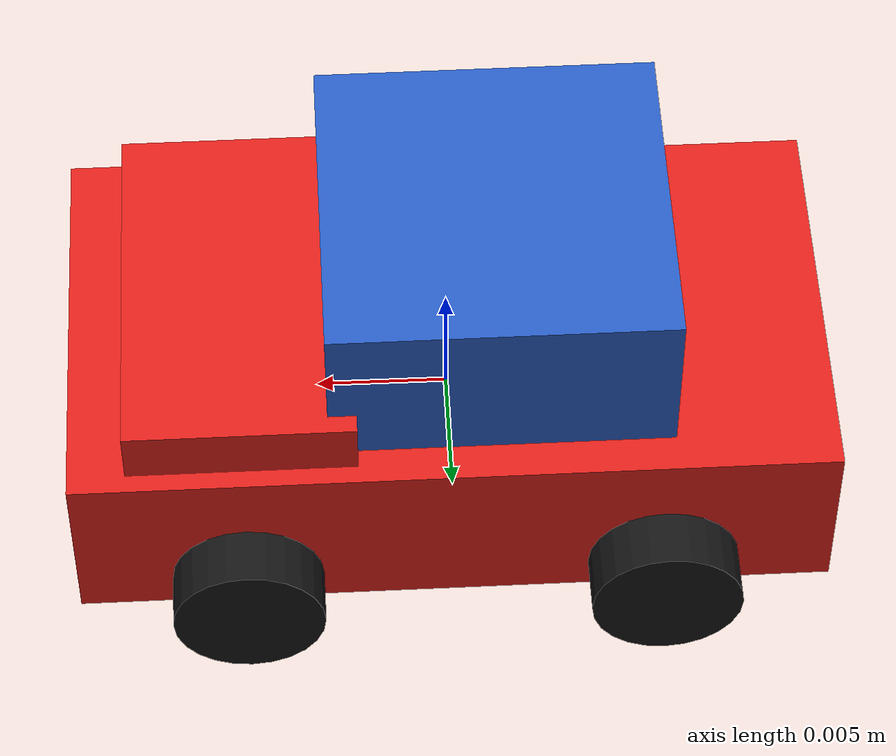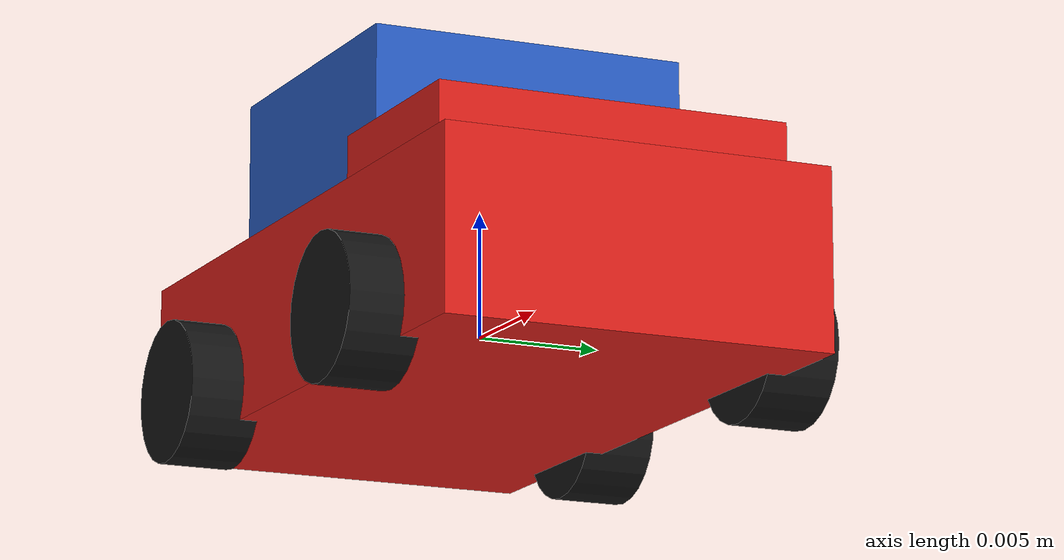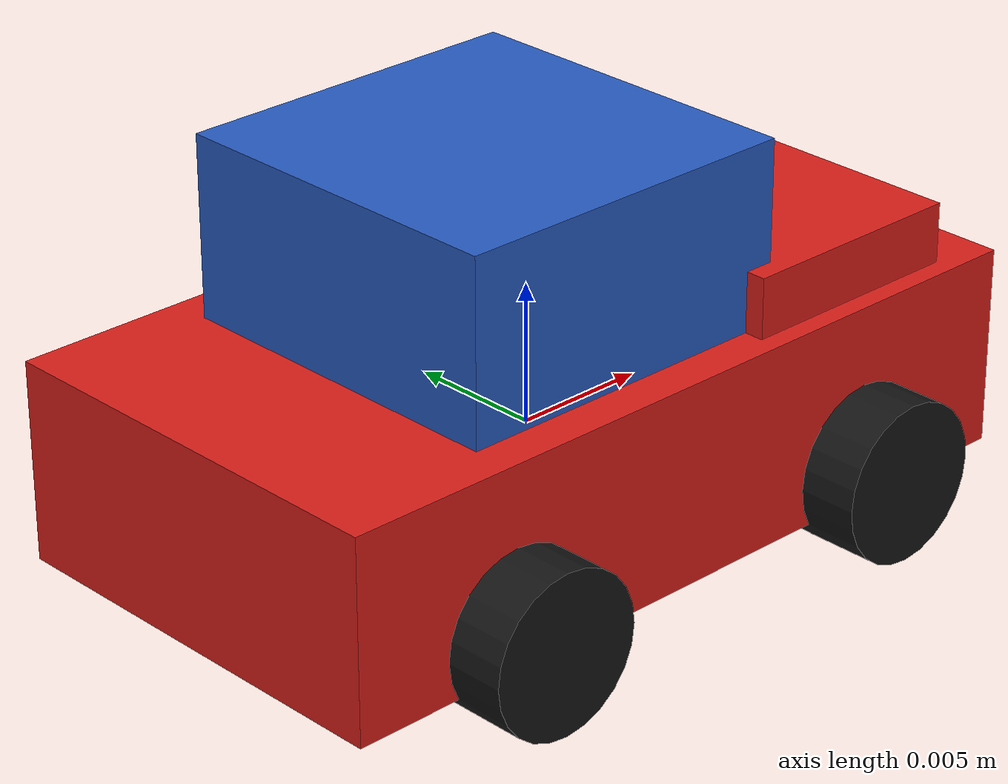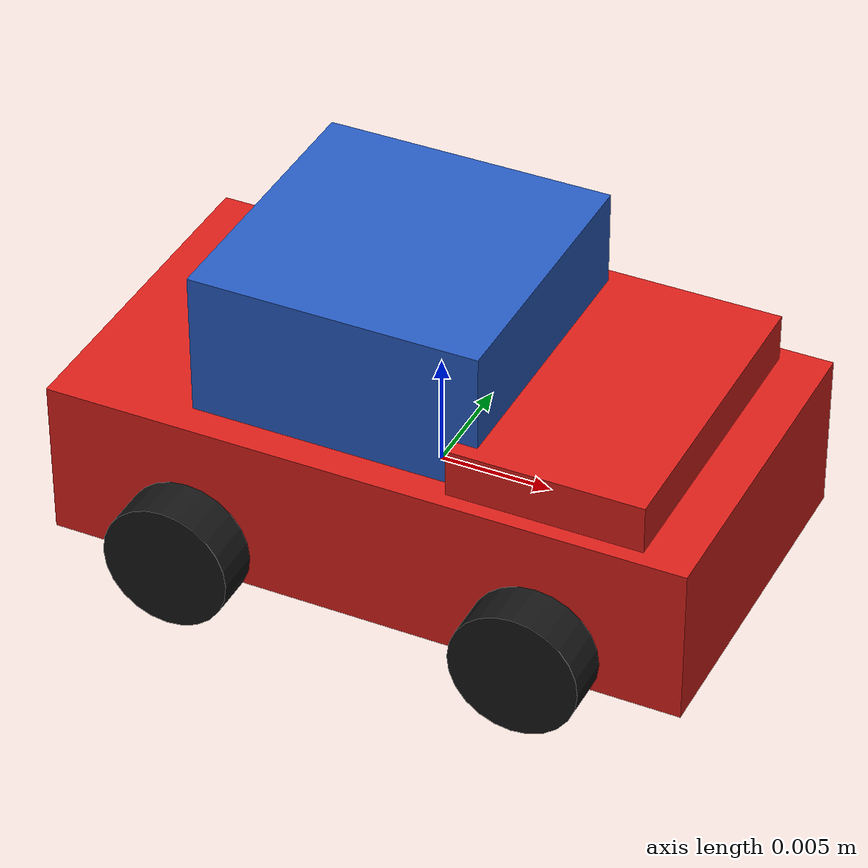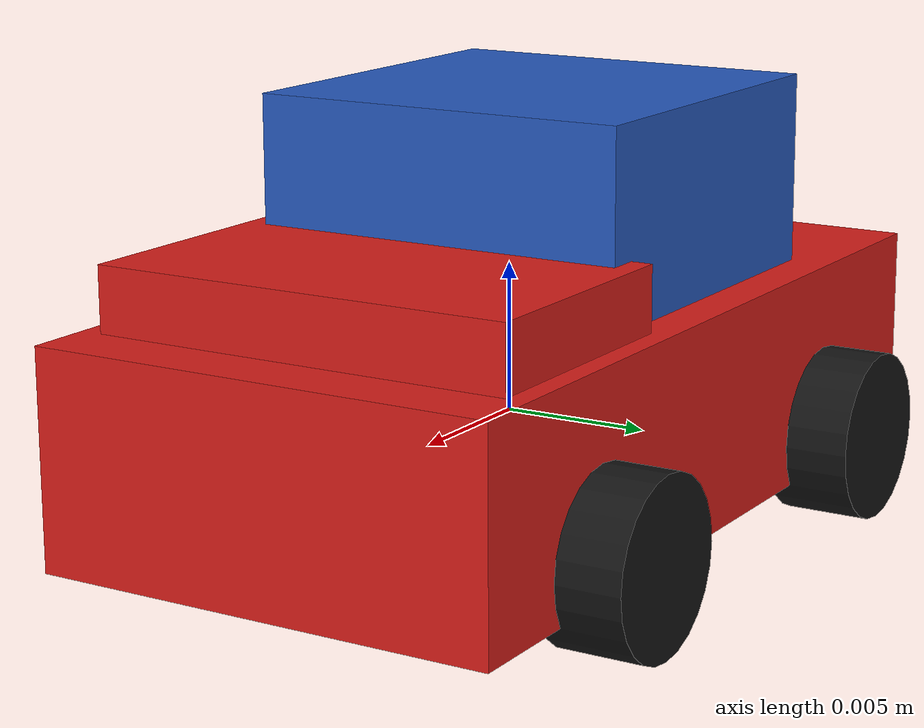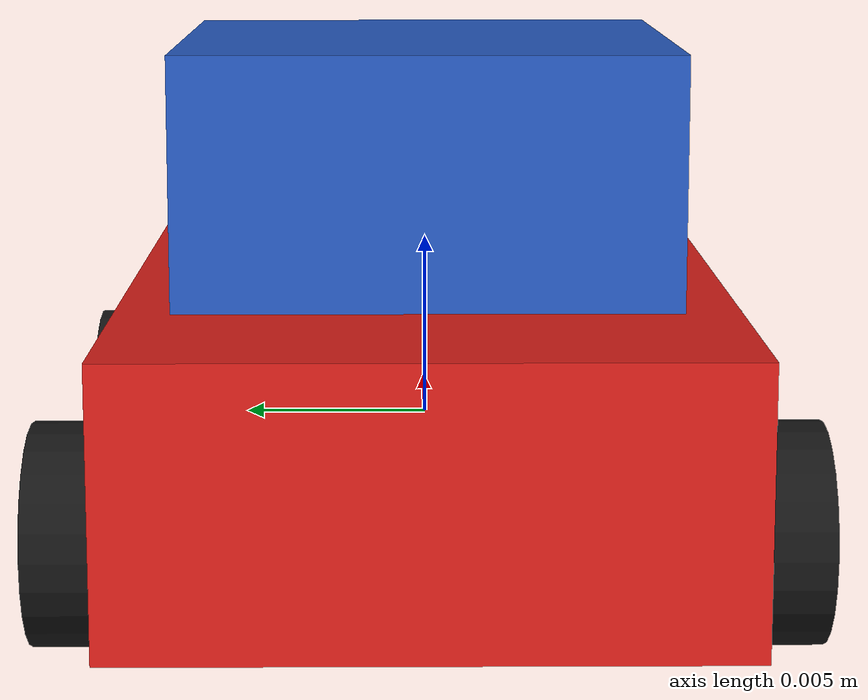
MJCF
<mujoco model="bbq_sauce_mover">
  <compiler angle="radian"/>
  <asset>
    <material name="car_body" rgba="0.85 0.12 0.10 1" specular="0.4" reflectance="0.3"/>
    <material name="car_cabin" rgba="0.15 0.35 0.75 1" specular="0.4" reflectance="0.3"/>
    <material name="car_wheel" rgba="0.08 0.08 0.08 1" specular="0.4" reflectance="0.3"/>
  </asset>
  <worldbody>
    <body>
      <body name="object">
        <geom name="chassis" type="box" size="0.01429 0.00786 0.00357" pos="0.00000 0.00000 0.00071"
              material="car_body" group="1" contype="0" conaffinity="0"
              solimp="0.998 0.998 0.001" solref="0.001 1" density="100" friction="0.95 0.3 0.1"/>
        <geom name="cabin" type="box" size="0.00643 0.00643 0.00357" pos="-0.00179 0.00000 0.00714"
              material="car_cabin" group="1" contype="0" conaffinity="0"
              solimp="0.998 0.998 0.001" solref="0.001 1" density="100" friction="0.95 0.3 0.1"/>
        <geom name="hood" type="box" size="0.00429 0.00714 0.00214" pos="0.00786 0.00000 0.00429"
              material="car_body" group="1" contype="0" conaffinity="0"
              solimp="0.998 0.998 0.001" solref="0.001 1" density="100" friction="0.95 0.3 0.1"/>
        <geom name="w_fl" type="cylinder" size="0.00286 0.00143" pos="0.00786 0.00857 -0.00143" euler="1.5708 0 0"
              material="car_wheel" group="1" contype="0" conaffinity="0"
              solimp="0.998 0.998 0.001" solref="0.001 1" density="100" friction="0.95 0.3 0.1"/>
        <geom name="w_fr" type="cylinder" size="0.00286 0.00143" pos="0.00786 -0.00857 -0.00143" euler="1.5708 0 0"
              material="car_wheel" group="1" contype="0" conaffinity="0"
              solimp="0.998 0.998 0.001" solref="0.001 1" density="100" friction="0.95 0.3 0.1"/>
        <geom name="w_rl" type="cylinder" size="0.00286 0.00143" pos="-0.00786 0.00857 -0.00143" euler="1.5708 0 0"
              material="car_wheel" group="1" contype="0" conaffinity="0"
              solimp="0.998 0.998 0.001" solref="0.001 1" density="100" friction="0.95 0.3 0.1"/>
        <geom name="w_rr" type="cylinder" size="0.00286 0.00143" pos="-0.00786 -0.00857 -0.00143" euler="1.5708 0 0"
              material="car_wheel" group="1" contype="0" conaffinity="0"
              solimp="0.998 0.998 0.001" solref="0.001 1" density="100" friction="0.95 0.3 0.1"/>
        <geom type="box" size="0.01500 0.01000 0.00643" pos="0.00000 0.00000 0.00179" group="0"
              rgba="0.8 0.2 0.2 0.0" solimp="0.998 0.998 0.001" solref="0.001 1"
              density="100" friction="0.95 0.3 0.1"/>
      </body>
      <site rgba="0 0 0 0" size="0.005" pos="0.00000 0.00000 -0.06000" name="bottom_site" />
      <site rgba="0 0 0 0" size="0.005" pos="0.00000 0.00000 0.06000" name="top_site" />
      <site rgba="0 0 0 0" size="0.005" pos="0.01500 0.01500 0.00000" name="horizontal_radius_site" />
    </body>
  </worldbody>
</mujoco>
